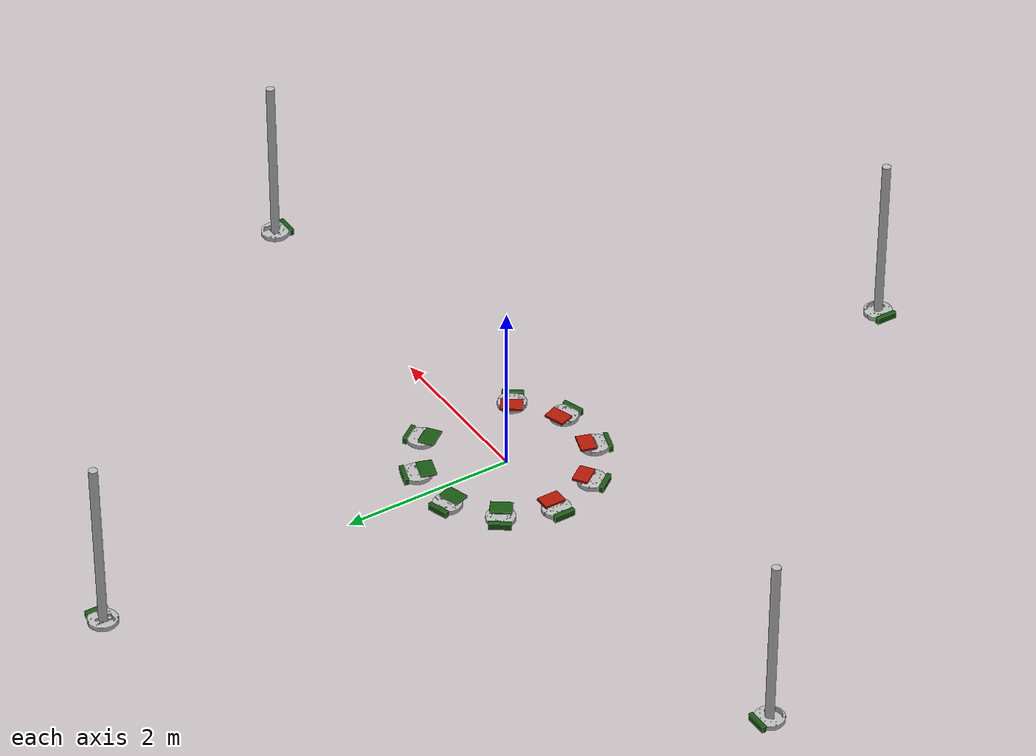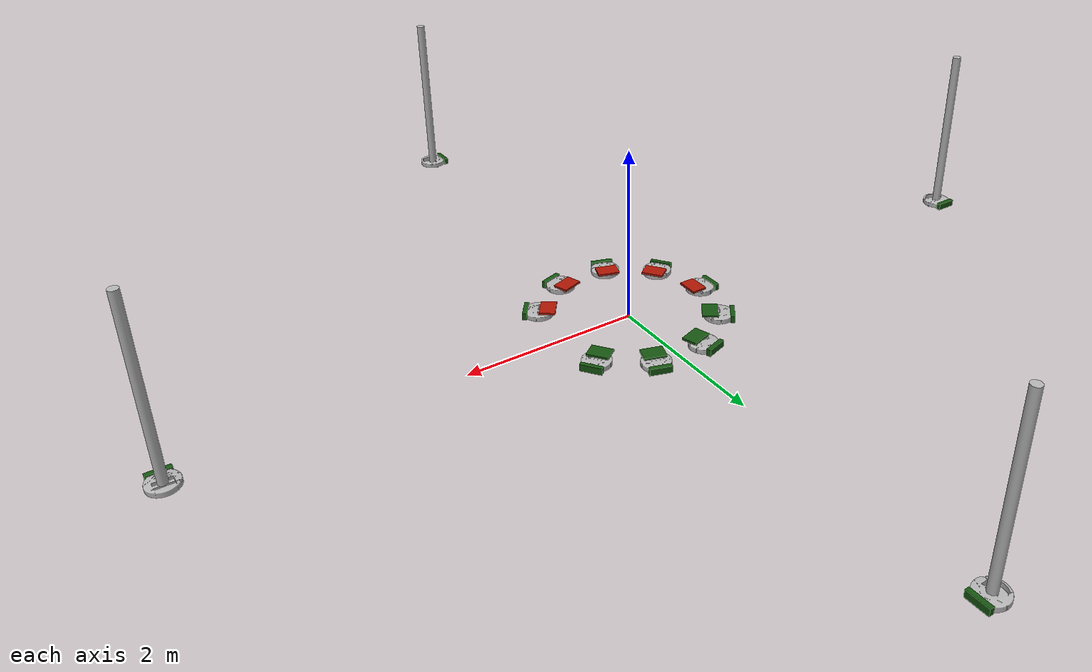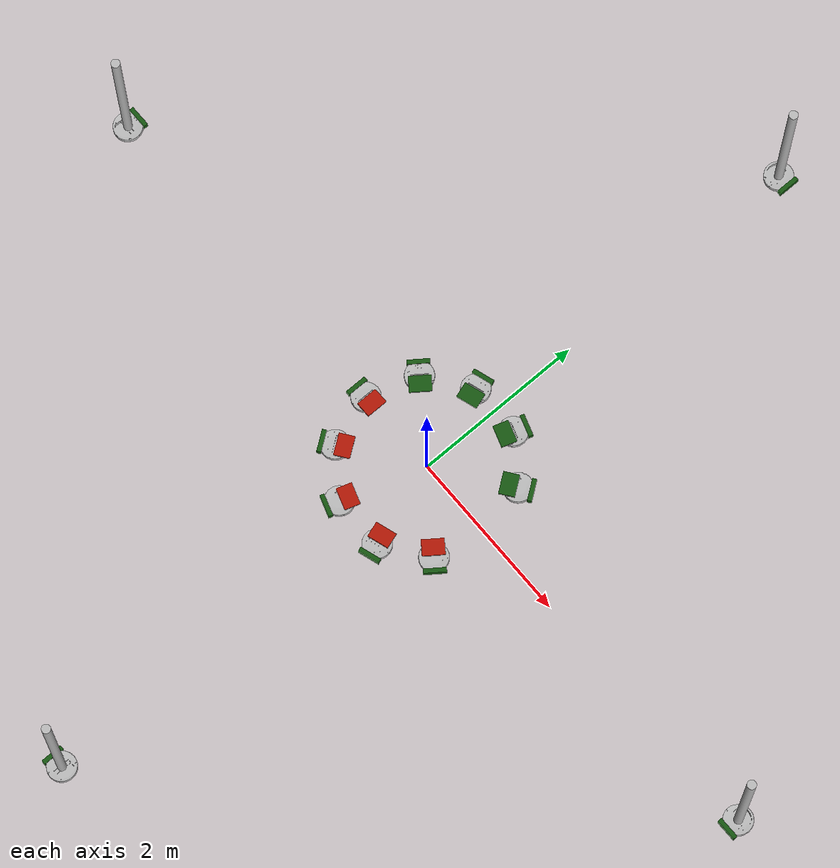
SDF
<sdf version="1.5">
 <world name="default">
  <include><uri>model://sun</uri></include>
  <model name="roomba_control_2">
   <pose>.809017 .587785 0 0 0 .628319</pose>
   <include><uri>model://roomba</uri></include>
   <plugin name="differential_drive_controller" filename="libgazebo_ros_diff_drive.so">
    <alwaysOn>true</alwaysOn>
    <updateRate>10</updateRate>
    <leftJoint>create::right_wheel</leftJoint>
    <rightJoint>create::left_wheel</rightJoint>
    <wheelSeparation>0.26000</wheelSeparation>
    <wheelDiameter>0.06600</wheelDiameter>
    <torque>20</torque>
    <commandTopic>cmd_vel</commandTopic>
    <odometryTopic>odom</odometryTopic>
    <odometryFrame>odom</odometryFrame>
    <robotBaseFrame>base</robotBaseFrame>
    <publishWheelTF>true</publishWheelTF>
    <publishWheelJointState>true</publishWheelJointState>
   </plugin>
   <link name="bumper">
    <pose>0.15 0 .05 0 0 0</pose>
    <collision name="collision"><geometry><box><size>.06 .26 .08</size></box></geometry></collision>
    <visual name="front_bumper_visual">
     <geometry><box><size>.05 .25 .08</size></box></geometry>
     <material>
      <diffuse>0.0859375 0.3359375 0.0625 1</diffuse>
      <specular>.0859375 0.3359375 0.0625 1</specular>
      <ambient>.0859375 0.3359375 0.0625 1</ambient>
      <emissive>.0859375 0.3359375 0.0625 1</emissive>
     </material>
    </visual>
    <sensor name="gripper_contact_sensor" type="contact">
     <always_on>true</always_on>
     <update_rate>1</update_rate>
     <contact><collision>collision</collision></contact>
     <plugin name="gripper_bumper" filename="libgazebo_ros_bumper.so">
      <bumperTopicName>front_bumper2</bumperTopicName>
      <frameName>roomba2</frameName>
     </plugin>
    </sensor>
   </link>
   <joint name="bumper" type="fixed">
    <parent>create::base</parent>
    <child>bumper</child>
    <axis><xyz>0 1 0</xyz><use_parent_model_frame>true</use_parent_model_frame></axis>
   </joint>
  </model>
  <model name="roomba_control_3">
   <pose>.309017 .951057 0 0 0 1.2566</pose>
   <include><uri>model://roomba</uri></include>
   <plugin name="differential_drive_controller" filename="libgazebo_ros_diff_drive.so">
    <alwaysOn>true</alwaysOn>
    <updateRate>10</updateRate>
    <leftJoint>create::right_wheel</leftJoint>
    <rightJoint>create::left_wheel</rightJoint>
    <wheelSeparation>0.26000</wheelSeparation>
    <wheelDiameter>0.06600</wheelDiameter>
    <torque>20</torque>
    <commandTopic>cmd_vel</commandTopic>
    <odometryTopic>odom</odometryTopic>
    <odometryFrame>odom</odometryFrame>
    <robotBaseFrame>base</robotBaseFrame>
    <publishWheelTF>true</publishWheelTF>
    <publishWheelJointState>true</publishWheelJointState>
   </plugin>
   <link name="bumper">
    <pose>0.15 0 .05 0 0 0</pose>
    <collision name="collision"><geometry><box><size>.06 .26 .08</size></box></geometry></collision>
    <visual name="front_bumper_visual">
     <geometry><box><size>.05 .25 .08</size></box></geometry>
     <material>
      <diffuse>0.0859375 0.3359375 0.0625 1</diffuse>
      <specular>.0859375 0.3359375 0.0625 1</specular>
      <ambient>.0859375 0.3359375 0.0625 1</ambient>
      <emissive>.0859375 0.3359375 0.0625 1</emissive>
     </material>
    </visual>
    <sensor name="gripper_contact_sensor" type="contact">
     <always_on>true</always_on>
     <update_rate>1</update_rate>
     <contact><collision>collision</collision></contact>
     <plugin name="gripper_bumper" filename="libgazebo_ros_bumper.so">
      <bumperTopicName>front_bumpe3</bumperTopicName>
      <frameName>roomba3</frameName>
     </plugin>
    </sensor>
   </link>
   <joint name="bumper" type="fixed">
    <parent>create::base</parent>
    <child>bumper</child>
    <axis><xyz>0 1 0</xyz><use_parent_model_frame>true</use_parent_model_frame></axis>
   </joint>
  </model>
  <model name="roomba_control_4">
   <pose>-.309017 .951057 0 0 0 1.88496</pose>
   <include><uri>model://roomba</uri></include>
   <plugin name="differential_drive_controller" filename="libgazebo_ros_diff_drive.so">
    <alwaysOn>true</alwaysOn>
    <updateRate>10</updateRate>
    <leftJoint>create::right_wheel</leftJoint>
    <rightJoint>create::left_wheel</rightJoint>
    <wheelSeparation>0.26000</wheelSeparation>
    <wheelDiameter>0.06600</wheelDiameter>
    <torque>20</torque>
    <commandTopic>cmd_vel</commandTopic>
    <odometryTopic>odom</odometryTopic>
    <odometryFrame>odom</odometryFrame>
    <robotBaseFrame>base</robotBaseFrame>
    <publishWheelTF>true</publishWheelTF>
    <publishWheelJointState>true</publishWheelJointState>
   </plugin>
   <link name="bumper">
    <pose>0.15 0 .05 0 0 0</pose>
    <collision name="collision"><geometry><box><size>.06 .26 .08</size></box></geometry></collision>
    <visual name="front_bumper_visual">
     <geometry><box><size>.05 .25 .08</size></box></geometry>
     <material>
      <diffuse>0.0859375 0.3359375 0.0625 1</diffuse>
      <specular>.0859375 0.3359375 0.0625 1</specular>
      <ambient>.0859375 0.3359375 0.0625 1</ambient>
      <emissive>.0859375 0.3359375 0.0625 1</emissive>
     </material>
    </visual>
    <sensor name="gripper_contact_sensor" type="contact">
     <always_on>true</always_on>
     <update_rate>1</update_rate>
     <contact><collision>collision</collision></contact>
     <plugin name="gripper_bumper" filename="libgazebo_ros_bumper.so">
      <bumperTopicName>front_bumper4</bumperTopicName>
      <frameName>roomba4</frameName>
     </plugin>
    </sensor>
   </link>
   <joint name="bumper" type="fixed">
    <parent>create::base</parent>
    <child>bumper</child>
    <axis><xyz>0 1 0</xyz><use_parent_model_frame>true</use_parent_model_frame></axis>
   </joint>
  </model>
  <model name="roomba_control_5">
   <pose>-.809017 .587785 0 0 0 2.51327</pose>
   <include><uri>model://roomba</uri></include>
   <plugin name="differential_drive_controller" filename="libgazebo_ros_diff_drive.so">
    <alwaysOn>true</alwaysOn>
    <updateRate>10</updateRate>
    <leftJoint>create::right_wheel</leftJoint>
    <rightJoint>create::left_wheel</rightJoint>
    <wheelSeparation>0.26000</wheelSeparation>
    <wheelDiameter>0.06600</wheelDiameter>
    <torque>20</torque>
    <commandTopic>cmd_vel</commandTopic>
    <odometryTopic>odom</odometryTopic>
    <odometryFrame>odom</odometryFrame>
    <robotBaseFrame>base</robotBaseFrame>
    <publishWheelTF>true</publishWheelTF>
    <publishWheelJointState>true</publishWheelJointState>
   </plugin>
   <link name="bumper">
    <pose>0.15 0 .05 0 0 0</pose>
    <collision name="collision"><geometry><box><size>.06 .26 .08</size></box></geometry></collision>
    <visual name="front_bumper_visual">
     <geometry><box><size>.05 .25 .08</size></box></geometry>
     <material>
      <diffuse>0.0859375 0.3359375 0.0625 1</diffuse>
      <specular>.0859375 0.3359375 0.0625 1</specular>
      <ambient>.0859375 0.3359375 0.0625 1</ambient>
      <emissive>.0859375 0.3359375 0.0625 1</emissive>
     </material>
    </visual>
    <sensor name="gripper_contact_sensor" type="contact">
     <always_on>true</always_on>
     <update_rate>1</update_rate>
     <contact><collision>collision</collision></contact>
     <plugin name="gripper_bumper" filename="libgazebo_ros_bumper.so">
      <bumperTopicName>front_bumper5</bumperTopicName>
      <frameName>roomba5</frameName>
     </plugin>
    </sensor>
   </link>
   <joint name="bumper" type="fixed">
    <parent>create::base</parent>
    <child>bumper</child>
    <axis><xyz>0 1 0</xyz><use_parent_model_frame>true</use_parent_model_frame></axis>
   </joint>
  </model>
  <model name="roomba_control_6">
   <pose>-1 0 0 0 0 3.14159</pose>
   <include><uri>model://roomba2</uri></include>
   <plugin name="differential_drive_controller" filename="libgazebo_ros_diff_drive.so">
    <alwaysOn>true</alwaysOn>
    <updateRate>10</updateRate>
    <leftJoint>create::right_wheel</leftJoint>
    <rightJoint>create::left_wheel</rightJoint>
    <wheelSeparation>0.26000</wheelSeparation>
    <wheelDiameter>0.06600</wheelDiameter>
    <torque>20</torque>
    <commandTopic>cmd_vel</commandTopic>
    <odometryTopic>odom</odometryTopic>
    <odometryFrame>odom</odometryFrame>
    <robotBaseFrame>base</robotBaseFrame>
    <publishWheelTF>true</publishWheelTF>
    <publishWheelJointState>true</publishWheelJointState>
   </plugin>
   <link name="bumper">
    <pose>0.15 0 .05 0 0 0</pose>
    <collision name="collision"><geometry><box><size>.06 .26 .08</size></box></geometry></collision>
    <visual name="front_bumper_visual">
     <geometry><box><size>.05 .25 .08</size></box></geometry>
     <material>
      <diffuse>0.0859375 0.3359375 0.0625 1</diffuse>
      <specular>.0859375 0.3359375 0.0625 1</specular>
      <ambient>.0859375 0.3359375 0.0625 1</ambient>
      <emissive>.0859375 0.3359375 0.0625 1</emissive>
     </material>
    </visual>
    <sensor name="gripper_contact_sensor" type="contact">
     <always_on>true</always_on>
     <update_rate>1</update_rate>
     <contact><collision>collision</collision></contact>
     <plugin name="gripper_bumper" filename="libgazebo_ros_bumper.so">
      <bumperTopicName>front_bumper6</bumperTopicName>
      <frameName>roomba6</frameName>
     </plugin>
    </sensor>
   </link>
   <joint name="bumper" type="fixed">
    <parent>create::base</parent>
    <child>bumper</child>
    <axis><xyz>0 1 0</xyz><use_parent_model_frame>true</use_parent_model_frame></axis>
   </joint>
  </model>
  <model name="roomba_control_7">
   <pose>-.809017 -.587785 0 0 0 3.76991</pose>
   <include><uri>model://roomba2</uri></include>
   <plugin name="differential_drive_controller" filename="libgazebo_ros_diff_drive.so">
    <alwaysOn>true</alwaysOn>
    <updateRate>10</updateRate>
    <leftJoint>create::right_wheel</leftJoint>
    <rightJoint>create::left_wheel</rightJoint>
    <wheelSeparation>0.26000</wheelSeparation>
    <wheelDiameter>0.06600</wheelDiameter>
    <torque>20</torque>
    <commandTopic>cmd_vel</commandTopic>
    <odometryTopic>odom</odometryTopic>
    <odometryFrame>odom</odometryFrame>
    <robotBaseFrame>base</robotBaseFrame>
    <publishWheelTF>true</publishWheelTF>
    <publishWheelJointState>true</publishWheelJointState>
   </plugin>
   <link name="bumper">
    <pose>0.15 0 .05 0 0 0</pose>
    <collision name="collision"><geometry><box><size>.06 .26 .08</size></box></geometry></collision>
    <visual name="front_bumper_visual">
     <geometry><box><size>.05 .25 .08</size></box></geometry>
     <material>
      <diffuse>0.0859375 0.3359375 0.0625 1</diffuse>
      <specular>.0859375 0.3359375 0.0625 1</specular>
      <ambient>.0859375 0.3359375 0.0625 1</ambient>
      <emissive>.0859375 0.3359375 0.0625 1</emissive>
     </material>
    </visual>
    <sensor name="gripper_contact_sensor" type="contact">
     <always_on>true</always_on>
     <update_rate>1</update_rate>
     <contact><collision>collision</collision></contact>
     <plugin name="gripper_bumper" filename="libgazebo_ros_bumper.so">
      <bumperTopicName>front_bumper7</bumperTopicName>
      <frameName>roomba7</frameName>
     </plugin>
    </sensor>
   </link>
   <joint name="bumper" type="fixed">
    <parent>create::base</parent>
    <child>bumper</child>
    <axis><xyz>0 1 0</xyz><use_parent_model_frame>true</use_parent_model_frame></axis>
   </joint>
  </model>
  <model name="roomba_control_8">
   <pose>-.309017 -.951057 0 0 0 4.39823</pose>
   <include><uri>model://roomba2</uri></include>
   <plugin name="differential_drive_controller" filename="libgazebo_ros_diff_drive.so">
    <alwaysOn>true</alwaysOn>
    <updateRate>10</updateRate>
    <leftJoint>create::right_wheel</leftJoint>
    <rightJoint>create::left_wheel</rightJoint>
    <wheelSeparation>0.26000</wheelSeparation>
    <wheelDiameter>0.06600</wheelDiameter>
    <torque>20</torque>
    <commandTopic>cmd_vel</commandTopic>
    <odometryTopic>odom</odometryTopic>
    <odometryFrame>odom</odometryFrame>
    <robotBaseFrame>base</robotBaseFrame>
    <publishWheelTF>true</publishWheelTF>
    <publishWheelJointState>true</publishWheelJointState>
   </plugin>
   <link name="bumper">
    <pose>0.15 0 .05 0 0 0</pose>
    <collision name="collision"><geometry><box><size>.06 .26 .08</size></box></geometry></collision>
    <visual name="front_bumper_visual">
     <geometry><box><size>.05 .25 .08</size></box></geometry>
     <material>
      <diffuse>0.0859375 0.3359375 0.0625 1</diffuse>
      <specular>.0859375 0.3359375 0.0625 1</specular>
      <ambient>.0859375 0.3359375 0.0625 1</ambient>
      <emissive>.0859375 0.3359375 0.0625 1</emissive>
     </material>
    </visual>
    <sensor name="gripper_contact_sensor" type="contact">
     <always_on>true</always_on>
     <update_rate>1</update_rate>
     <contact><collision>collision</collision></contact>
     <plugin name="gripper_bumper" filename="libgazebo_ros_bumper.so">
      <bumperTopicName>front_bumper8</bumperTopicName>
      <frameName>roomba8</frameName>
     </plugin>
    </sensor>
   </link>
   <joint name="bumper" type="fixed">
    <parent>create::base</parent>
    <child>bumper</child>
    <axis><xyz>0 1 0</xyz><use_parent_model_frame>true</use_parent_model_frame></axis>
   </joint>
  </model>
  <model name="roomba_control_9">
   <pose>.309017 -.951057 0 0 0 5.02655</pose>
   <include><uri>model://roomba2</uri></include>
   <plugin name="differential_drive_controller" filename="libgazebo_ros_diff_drive.so">
    <alwaysOn>true</alwaysOn>
    <updateRate>10</updateRate>
    <leftJoint>create::right_wheel</leftJoint>
    <rightJoint>create::left_wheel</rightJoint>
    <wheelSeparation>0.26000</wheelSeparation>
    <wheelDiameter>0.06600</wheelDiameter>
    <torque>20</torque>
    <commandTopic>cmd_vel</commandTopic>
    <odometryTopic>odom</odometryTopic>
    <odometryFrame>odom</odometryFrame>
    <robotBaseFrame>base</robotBaseFrame>
    <publishWheelTF>true</publishWheelTF>
    <publishWheelJointState>true</publishWheelJointState>
   </plugin>
   <link name="bumper">
    <pose>0.15 0 .05 0 0 0</pose>
    <collision name="collision"><geometry><box><size>.06 .26 .08</size></box></geometry></collision>
    <visual name="front_bumper_visual">
     <geometry><box><size>.05 .25 .08</size></box></geometry>
     <material>
      <diffuse>0.0859375 0.3359375 0.0625 1</diffuse>
      <specular>.0859375 0.3359375 0.0625 1</specular>
      <ambient>.0859375 0.3359375 0.0625 1</ambient>
      <emissive>.0859375 0.3359375 0.0625 1</emissive>
     </material>
    </visual>
    <sensor name="gripper_contact_sensor" type="contact">
     <always_on>true</always_on>
     <update_rate>1</update_rate>
     <contact><collision>collision</collision></contact>
     <plugin name="gripper_bumper" filename="libgazebo_ros_bumper.so">
      <bumperTopicName>front_bumper9</bumperTopicName>
      <frameName>roomba9</frameName>
     </plugin>
    </sensor>
   </link>
   <joint name="bumper" type="fixed">
    <parent>create::base</parent>
    <child>bumper</child>
    <axis><xyz>0 1 0</xyz><use_parent_model_frame>true</use_parent_model_frame></axis>
   </joint>
  </model>
  <model name="roomba_control_10">
   <pose>.809017 -.587785 0 0 0 5.65487</pose>
   <include><uri>model://roomba2</uri></include>
   <plugin name="differential_drive_controller" filename="libgazebo_ros_diff_drive.so">
    <alwaysOn>true</alwaysOn>
    <updateRate>10</updateRate>
    <leftJoint>create::right_wheel</leftJoint>
    <rightJoint>create::left_wheel</rightJoint>
    <wheelSeparation>0.26000</wheelSeparation>
    <wheelDiameter>0.06600</wheelDiameter>
    <torque>20</torque>
    <commandTopic>cmd_vel</commandTopic>
    <odometryTopic>odom</odometryTopic>
    <odometryFrame>odom</odometryFrame>
    <robotBaseFrame>base</robotBaseFrame>
    <publishWheelTF>true</publishWheelTF>
    <publishWheelJointState>true</publishWheelJointState>
   </plugin>
   <link name="bumper">
    <pose>0.15 0 .05 0 0 0</pose>
    <collision name="collision"><geometry><box><size>.06 .26 .08</size></box></geometry></collision>
    <visual name="front_bumper_visual">
     <geometry><box><size>.05 .25 .08</size></box></geometry>
     <material>
      <diffuse>0.0859375 0.3359375 0.0625 1</diffuse>
      <specular>.0859375 0.3359375 0.0625 1</specular>
      <ambient>.0859375 0.3359375 0.0625 1</ambient>
      <emissive>.0859375 0.3359375 0.0625 1</emissive>
     </material>
    </visual>
    <sensor name="gripper_contact_sensor" type="contact">
     <always_on>true</always_on>
     <update_rate>1</update_rate>
     <contact><collision>collision</collision></contact>
     <plugin name="gripper_bumper" filename="libgazebo_ros_bumper.so">
      <bumperTopicName>front_bumper10</bumperTopicName>
      <frameName>roomba10</frameName>
     </plugin>
    </sensor>
   </link>
   <joint name="bumper" type="fixed">
    <parent>create::base</parent>
    <child>bumper</child>
    <axis><xyz>0 1 0</xyz><use_parent_model_frame>true</use_parent_model_frame></axis>
   </joint>
  </model>
  <model name="obstacle_roomba_1">
   <pose>5 0 0 0 0 4.71289</pose>
   <include><uri>model://obstacle</uri></include>
   <plugin name="differential_drive_controller" filename="libgazebo_ros_diff_drive.so">
    <alwaysOn>true</alwaysOn>
    <updateRate>10</updateRate>
    <leftJoint>create::right_wheel</leftJoint>
    <rightJoint>create::left_wheel</rightJoint>
    <wheelSeparation>0.26000</wheelSeparation>
    <wheelDiameter>0.06600</wheelDiameter>
    <torque>20</torque>
    <commandTopic>cmd_vel</commandTopic>
    <odometryTopic>odom</odometryTopic>
    <odometryFrame>odom</odometryFrame>
    <robotBaseFrame>base</robotBaseFrame>
    <publishWheelTF>true</publishWheelTF>
    <publishWheelJointState>true</publishWheelJointState>
   </plugin>
   <link name="bumper">
    <pose>0.15 0 .05 0 0 0</pose>
    <collision name="collision"><geometry><box><size>.06 .26 .08</size></box></geometry></collision>
    <visual name="front_bumper_visual">
     <geometry><box><size>.05 .25 .08</size></box></geometry>
     <material>
      <diffuse>0.0859375 0.3359375 0.0625 1</diffuse>
      <specular>.0859375 0.3359375 0.0625 1</specular>
      <ambient>.0859375 0.3359375 0.0625 1</ambient>
      <emissive>.0859375 0.3359375 0.0625 1</emissive>
     </material>
    </visual>
    <sensor name="gripper_contact_sensor" type="contact">
     <always_on>true</always_on>
     <update_rate>10</update_rate>
     <contact><collision>collision</collision></contact>
     <plugin name="gripper_bumper" filename="libgazebo_ros_bumper.so">
      <bumperTopicName>front_bumper11</bumperTopicName>
      <frameName>obstacleRoomba1</frameName>
     </plugin>
    </sensor>
   </link>
   <joint name="bumper" type="fixed">
    <parent>create::base</parent>
    <child>bumper</child>
    <axis><xyz>0 1 0</xyz><use_parent_model_frame>true</use_parent_model_frame></axis>
   </joint>
  </model>
  <model name="obstacle_roomba_2">
   <pose>0 5 0 0 0 0</pose>
   <include><uri>model://obstacle</uri></include>
   <plugin name="differential_drive_controller" filename="libgazebo_ros_diff_drive.so">
    <alwaysOn>true</alwaysOn>
    <updateRate>10</updateRate>
    <leftJoint>create::right_wheel</leftJoint>
    <rightJoint>create::left_wheel</rightJoint>
    <wheelSeparation>0.26000</wheelSeparation>
    <wheelDiameter>0.06600</wheelDiameter>
    <torque>20</torque>
    <commandTopic>cmd_vel</commandTopic>
    <odometryTopic>odom</odometryTopic>
    <odometryFrame>odom</odometryFrame>
    <robotBaseFrame>base</robotBaseFrame>
    <publishWheelTF>true</publishWheelTF>
    <publishWheelJointState>true</publishWheelJointState>
   </plugin>
   <link name="bumper">
    <pose>0.15 0 .05 0 0 0</pose>
    <collision name="collision"><geometry><box><size>.06 .26 .08</size></box></geometry></collision>
    <visual name="front_bumper_visual">
     <geometry><box><size>.05 .25 .08</size></box></geometry>
     <material>
      <diffuse>0.0859375 0.3359375 0.0625 1</diffuse>
      <specular>.0859375 0.3359375 0.0625 1</specular>
      <ambient>.0859375 0.3359375 0.0625 1</ambient>
      <emissive>.0859375 0.3359375 0.0625 1</emissive>
     </material>
    </visual>
    <sensor name="gripper_contact_sensor" type="contact">
     <always_on>true</always_on>
     <update_rate>1</update_rate>
     <contact><collision>collision</collision></contact>
     <plugin name="gripper_bumper" filename="libgazebo_ros_bumper.so">
      <bumperTopicName>front_bumper12</bumperTopicName>
      <frameName>obstacleRoomba2</frameName>
     </plugin>
    </sensor>
   </link>
   <joint name="bumper" type="fixed">
    <parent>create::base</parent>
    <child>bumper</child>
    <axis><xyz>0 1 0</xyz><use_parent_model_frame>true</use_parent_model_frame></axis>
   </joint>
  </model>
  <model name="obstacle_roomba_3">
   <pose>-5 0 0 0 0 1.570796</pose>
   <include><uri>model://obstacle</uri></include>
   <plugin name="differential_drive_controller" filename="libgazebo_ros_diff_drive.so">
    <alwaysOn>true</alwaysOn>
    <updateRate>10</updateRate>
    <leftJoint>create::right_wheel</leftJoint>
    <rightJoint>create::left_wheel</rightJoint>
    <wheelSeparation>0.26000</wheelSeparation>
    <wheelDiameter>0.06600</wheelDiameter>
    <torque>20</torque>
    <commandTopic>cmd_vel</commandTopic>
    <odometryTopic>odom</odometryTopic>
    <odometryFrame>odom</odometryFrame>
    <robotBaseFrame>base</robotBaseFrame>
    <publishWheelTF>true</publishWheelTF>
    <publishWheelJointState>true</publishWheelJointState>
   </plugin>
   <link name="bumper">
    <pose>0.15 0 .05 0 0 0</pose>
    <collision name="collision"><geometry><box><size>.06 .26 .08</size></box></geometry></collision>
    <visual name="front_bumper_visual">
     <geometry><box><size>.05 .25 .08</size></box></geometry>
     <material>
      <diffuse>0.0859375 0.3359375 0.0625 1</diffuse>
      <specular>.0859375 0.3359375 0.0625 1</specular>
      <ambient>.0859375 0.3359375 0.0625 1</ambient>
      <emissive>.0859375 0.3359375 0.0625 1</emissive>
     </material>
    </visual>
    <sensor name="gripper_contact_sensor" type="contact">
     <always_on>true</always_on>
     <update_rate>1</update_rate>
     <contact><collision>collision</collision></contact>
     <plugin name="gripper_bumper" filename="libgazebo_ros_bumper.so">
      <bumperTopicName>front_bumper13</bumperTopicName>
      <frameName>obstacleRoomba3</frameName>
     </plugin>
    </sensor>
   </link>
   <joint name="bumper" type="fixed">
    <parent>create::base</parent>
    <child>bumper</child>
    <axis><xyz>0 1 0</xyz><use_parent_model_frame>true</use_parent_model_frame></axis>
   </joint>
  </model>
  <model name="obstacle_roomba_4">
   <pose>0 -5 0 0 0 3.14159</pose>
   <include><uri>model://obstacle</uri></include>
   <plugin name="differential_drive_controller" filename="libgazebo_ros_diff_drive.so">
    <alwaysOn>true</alwaysOn>
    <updateRate>10</updateRate>
    <leftJoint>create::right_wheel</leftJoint>
    <rightJoint>create::left_wheel</rightJoint>
    <wheelSeparation>0.26000</wheelSeparation>
    <wheelDiameter>0.06600</wheelDiameter>
    <torque>20</torque>
    <commandTopic>cmd_vel</commandTopic>
    <odometryTopic>odom</odometryTopic>
    <odometryFrame>odom</odometryFrame>
    <robotBaseFrame>base</robotBaseFrame>
    <publishWheelTF>true</publishWheelTF>
    <publishWheelJointState>true</publishWheelJointState>
   </plugin>
   <link name="bumper">
    <pose>0.15 0 .05 0 0 0</pose>
    <collision name="collision"><geometry><box><size>.06 .26 .08</size></box></geometry></collision>
    <visual name="front_bumper_visual">
     <geometry><box><size>.05 .25 .08</size></box></geometry>
     <material>
      <diffuse>0.0859375 0.3359375 0.0625 1</diffuse>
      <specular>.0859375 0.3359375 0.0625 1</specular>
      <ambient>.0859375 0.3359375 0.0625 1</ambient>
      <emissive>.0859375 0.3359375 0.0625 1</emissive>
     </material>
    </visual>
    <sensor name="gripper_contact_sensor" type="contact">
     <always_on>true</always_on>
     <update_rate>1</update_rate>
     <contact><collision>collision</collision></contact>
     <plugin name="gripper_bumper" filename="libgazebo_ros_bumper.so">
      <bumperTopicName>front_bumper14</bumperTopicName>
      <frameName>obstacleRoomba4</frameName>
     </plugin>
    </sensor>
   </link>
   <joint name="bumper" type="fixed">
    <parent>create::base</parent>
    <child>bumper</child>
    <axis><xyz>0 1 0</xyz><use_parent_model_frame>true</use_parent_model_frame></axis>
   </joint>
  </model>
 </world>
</sdf>

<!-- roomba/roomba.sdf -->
<sdf version="1.5">
  <model name="create">
    <link name="base">
      <inertial>
        <pose>0.001453 -0.000453 0.029787 0 0 0</pose>
        <inertia>
          <ixx>0.058640</ixx>
          <ixy>0.000124</ixy>
          <ixz>0.000615</ixz>
          <iyy>0.058786</iyy>
          <iyz>0.000014</iyz>
          <izz>1.532440</izz>
        </inertia>
        <mass>2.234000</mass>
      </inertial>
      <collision name="base_collision">
        <pose>0 0 0.047800 0 0 0</pose>
        <geometry>
          <cylinder>
            <radius>0.016495</radius>
            <length>0.061163</length>
          </cylinder>
        </geometry>
      </collision>
      <visual name="base_visual">
        <pose>0 0 0.047800 0 0 0</pose>
        <geometry>
          <mesh>
            <uri>model://create/meshes/create_body.dae</uri>
          </mesh>
        </geometry>
      </visual>
      <visual name='top_plate_visual'>
          <pose>-0.1 0.0 0.09 0 0 0</pose>
          <geometry>
            <box>
              <size>.18 .25 .025</size>
            </box>
          </geometry>
        <material>

            <!--green (RGB = 22,86,16)-->
            <diffuse>0.0859375 0.3359375 0.0625 1</diffuse>
            <specular>.0859375 0.3359375 0.0625 1</specular>
            <ambient>.0859375 0.3359375 0.0625 1</ambient>
            <emissive>.0859375 0.3359375 0.0625 1</emissive>
        </material>
      </visual>

      <collision name="front_wheel_collision">
        <pose>0.130000 0 0.017000 0 1.570700 1.570700</pose>
        <geometry>
          <sphere>
            <radius>0.018000</radius>
          </sphere>
        </geometry>
        <surface>
          <friction>
            <ode>
              <mu>0</mu>
              <mu2>0</mu2>
              <fdir1>0 0 0</fdir1>
              <slip1>0</slip1>
              <slip2>0</slip2>
            </ode>
          </friction>
        </surface>
      </collision>
      <visual name="front_wheel_visual">
        <pose>0.130000 0 0.017000 0 1.570700 1.570700</pose>
        <geometry>
          <sphere>
            <radius>0.009000</radius>
          </sphere>
        </geometry>
      </visual>
      <collision name="rear_wheel_collision">
        <pose>-0.13 0 0.017 0 1.5707 1.5707</pose>
        <geometry>
          <sphere>
            <radius>0.015000</radius>
          </sphere>
        </geometry>
        <surface>
          <friction>
            <ode>
              <mu>0</mu>
              <mu2>0</mu2>
              <fdir1>0 0 0</fdir1>
              <slip1>0</slip1>
              <slip2>0</slip2>
            </ode>
          </friction>
        </surface>
      </collision>
      <visual name="rear_wheel_visual">
        <pose>-0.130000 0 0.017000 0 1.570700 1.570700</pose>
        <geometry>
          <sphere>
            <radius>0.007500</radius>
          </sphere>
        </geometry>
      </visual>
      <sensor name="left_cliff_sensor" type="ray">
        <pose>0.070000 0.140000 0.027000 0 1.570790 0</pose>
        <ray>
          <scan>
            <horizontal>
              <samples>1</samples>
              <resolution>1.000000</resolution>
              <min_angle>0</min_angle>
              <max_angle>0</max_angle>
            </horizontal>
          </scan>
          <range>
            <min>0.010000</min>
            <max>0.040000</max>
            <resolution>0.100000</resolution>
          </range>
        </ray>
      </sensor>
      <sensor name="leftfront_cliff_sensor" type="ray">
        <pose>0.150000 0.040000 0.027000 0 1.570790 0</pose>
        <ray>
          <scan>
            <horizontal>
              <samples>1</samples>
              <resolution>1.000000</resolution>
              <min_angle>0</min_angle>
              <max_angle>0</max_angle>
            </horizontal>
          </scan>
          <range>
            <min>0.010000</min>
            <max>0.040000</max>
            <resolution>0.100000</resolution>
          </range>
        </ray>
      </sensor>
      <sensor name="right_cliff_sensor" type="ray">
        <pose>0.070000 -0.140000 0.027000 0 1.570790 0</pose>
        <ray>
          <scan>
            <horizontal>
              <samples>1</samples>
              <resolution>1.000000</resolution>
              <min_angle>0</min_angle>
              <max_angle>0</max_angle>
            </horizontal>
          </scan>
          <range>
            <min>0.010000</min>
            <max>0.040000</max>
            <resolution>0.100000</resolution>
          </range>
        </ray>
      </sensor>
      <sensor name="rightfront_cliff_sensor" type="ray">
        <pose>0.150000 -0.040000 0.027000 0 1.570790 0</pose>
        <ray>
          <scan>
            <horizontal>
              <samples>1</samples>
              <resolution>1.000000</resolution>
              <min_angle>0</min_angle>
              <max_angle>0</max_angle>
            </horizontal>
          </scan>
          <range>
            <min>0.010000</min>
            <max>0.040000</max>
            <resolution>0.100000</resolution>
          </range>
        </ray>
      </sensor>
      <sensor name="wall_sensor" type="ray">
        <pose>0.090000 -0.120000 0.059000 0 0 -1.000000</pose>
        <ray>
          <scan>
            <horizontal>
              <samples>1</samples>
              <resolution>1.000000</resolution>
              <min_angle>0</min_angle>
              <max_angle>0</max_angle>
            </horizontal>
          </scan>
          <range>
            <min>0.016000</min>
            <max>0.040000</max>
            <resolution>0.100000</resolution>
          </range>
        </ray>
      </sensor>
    </link>
    <link name="left_wheel">
      <pose>0 0.130000 0.032000 0 0 0</pose>
      <inertial>
        <inertia>
          <ixx>0.001000</ixx>
          <ixy>0</ixy>
          <ixz>0</ixz>
          <iyy>0.001000</iyy>
          <iyz>0</iyz>
          <izz>0.001000</izz>
        </inertia>
        <mass>0.010000</mass>
      </inertial>
      <collision name="collision">
        <pose>0 0 0 0 1.570700 1.570700</pose>
        <geometry>
          <cylinder>
            <radius>0.033000</radius>
            <length>0.023000</length>
          </cylinder>
        </geometry>
        <surface>
          <friction>
            <ode>
              <mu>10</mu>
              <mu2>10</mu2>
              <fdir1>0 0 0</fdir1>
              <slip1>0</slip1>
              <slip2>0</slip2>
            </ode>
          </friction>
        </surface>
      </collision>
      <visual name="visual">
        <pose>0 0 0 0 1.570700 1.570700</pose>
        <geometry>
          <cylinder>
            <radius>0.033000</radius>
            <length>0.023000</length>
          </cylinder>
        </geometry>
      </visual>
    </link>
    <link name="right_wheel">
      <pose>0 -0.130000 0.032000 0 0 0</pose>
      <inertial>
        <inertia>
          <ixx>0.001000</ixx>
          <ixy>0</ixy>
          <ixz>0</ixz>
          <iyy>0.001000</iyy>
          <iyz>0</iyz>
          <izz>0.001000</izz>
        </inertia>
        <mass>0.010000</mass>
      </inertial>
      <collision name="collision">
        <pose>0 0 0 0 1.570700 1.570700</pose>
        <geometry>
          <cylinder>
            <radius>0.033000</radius>
            <length>0.023000</length>
          </cylinder>
        </geometry>
        <surface>
          <friction>
            <ode>
              <mu>10</mu>
              <mu2>10</mu2>
              <fdir1>0 0 0</fdir1>
              <slip1>0</slip1>
              <slip2>0</slip2>
            </ode>
          </friction>
        </surface>
      </collision>
      <visual name="visual">
        <pose>0 0 0 0 1.570700 1.570700</pose>
        <geometry>
          <cylinder>
            <radius>0.033000</radius>
            <length>0.023000</length>
          </cylinder>
        </geometry>
      </visual>

    </link>
    <joint name="left_wheel" type="revolute">
      <parent>base</parent>
      <child>left_wheel</child>
      <axis>
        <xyz>0 1 0</xyz>
        <use_parent_model_frame>true</use_parent_model_frame>
      </axis>
    </joint>
    <joint name="right_wheel" type="revolute">
      <parent>base</parent>
      <child>right_wheel</child>
      <axis>
        <xyz>0 1 0</xyz>
        <use_parent_model_frame>true</use_parent_model_frame>
      </axis>
    </joint>

    <!-- front bumper and ros plugin -->

  </model>
</sdf>

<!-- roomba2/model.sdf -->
<sdf version="1.6">
  <model name="create">
    <link name="base">
      <inertial>
        <pose>0.001453 -0.000453 0.029787 0 0 0</pose>
        <inertia>
          <ixx>0.058640</ixx>
          <ixy>0.000124</ixy>
          <ixz>0.000615</ixz>
          <iyy>0.058786</iyy>
          <iyz>0.000014</iyz>
          <izz>1.532440</izz>
        </inertia>
        <mass>2.234000</mass>
      </inertial>
      <collision name="base_collision">
        <pose>0 0 0.047800 0 0 0</pose>
        <geometry>
          <cylinder>
            <radius>0.016495</radius>
            <length>0.061163</length>
          </cylinder>
        </geometry>
      </collision>
      <visual name="base_visual">
        <pose>0 0 0.047800 0 0 0</pose>
        <geometry>
          <mesh>
            <uri>model://create/meshes/create_body.dae</uri>
          </mesh>
        </geometry>
      </visual>

  <visual name='top_plate_visual'>
    <pose>-0.1 0.0 0.09 0 0 0</pose>
    <geometry>
      <box>
        <size>.18 .25 .025</size>
      </box>
    </geometry>
	<material>
	    <!--red (RGB = 176,22,4)-->
	    <diffuse>0.6875 0.0859 0.015625 1</diffuse>
	    <specular>0.6875 0.0859 0.015625 1</specular>
	    <ambient>0.6875 0.0859 0.015625 1</ambient>
	    <emissive>176 22 4 1</emissive>

	</material>
  </visual>

      <collision name="front_wheel_collision">
        <pose>0.130000 0 0.017000 0 1.570700 1.570700</pose>
        <geometry>
          <sphere>
            <radius>0.018000</radius>
          </sphere>
        </geometry>
        <surface>
          <friction>
            <ode>
              <mu>0</mu>
              <mu2>0</mu2>
              <fdir1>0 0 0</fdir1>
              <slip1>0</slip1>
              <slip2>0</slip2>
            </ode>
          </friction>
        </surface>
      </collision>
      <visual name="front_wheel_visual">
        <pose>0.130000 0 0.017000 0 1.570700 1.570700</pose>
        <geometry>
          <sphere>
            <radius>0.009000</radius>
          </sphere>
        </geometry>
      </visual>
      <collision name="rear_wheel_collision">
        <pose>-0.13 0 0.017 0 1.5707 1.5707</pose>
        <geometry>
          <sphere>
            <radius>0.015000</radius>
          </sphere>
        </geometry>
        <surface>
          <friction>
            <ode>
              <mu>0</mu>
              <mu2>0</mu2>
              <fdir1>0 0 0</fdir1>
              <slip1>0</slip1>
              <slip2>0</slip2>
            </ode>
          </friction>
        </surface>
      </collision>
      <visual name="rear_wheel_visual">
        <pose>-0.130000 0 0.017000 0 1.570700 1.570700</pose>
        <geometry>
          <sphere>
            <radius>0.007500</radius>
          </sphere>
        </geometry>
      </visual>
      <sensor name="left_cliff_sensor" type="ray">
        <pose>0.070000 0.140000 0.027000 0 1.570790 0</pose>
        <ray>
          <scan>
            <horizontal>
              <samples>1</samples>
              <resolution>1.000000</resolution>
              <min_angle>0</min_angle>
              <max_angle>0</max_angle>
            </horizontal>
          </scan>
          <range>
            <min>0.010000</min>
            <max>0.040000</max>
            <resolution>0.100000</resolution>
          </range>
        </ray>
      </sensor>
      <sensor name="leftfront_cliff_sensor" type="ray">
        <pose>0.150000 0.040000 0.027000 0 1.570790 0</pose>
        <ray>
          <scan>
            <horizontal>
              <samples>1</samples>
              <resolution>1.000000</resolution>
              <min_angle>0</min_angle>
              <max_angle>0</max_angle>
            </horizontal>
          </scan>
          <range>
            <min>0.010000</min>
            <max>0.040000</max>
            <resolution>0.100000</resolution>
          </range>
        </ray>
      </sensor>
      <sensor name="right_cliff_sensor" type="ray">
        <pose>0.070000 -0.140000 0.027000 0 1.570790 0</pose>
        <ray>
          <scan>
            <horizontal>
              <samples>1</samples>
              <resolution>1.000000</resolution>
              <min_angle>0</min_angle>
              <max_angle>0</max_angle>
            </horizontal>
          </scan>
          <range>
            <min>0.010000</min>
            <max>0.040000</max>
            <resolution>0.100000</resolution>
          </range>
        </ray>
      </sensor>
      <sensor name="rightfront_cliff_sensor" type="ray">
        <pose>0.150000 -0.040000 0.027000 0 1.570790 0</pose>
        <ray>
          <scan>
            <horizontal>
              <samples>1</samples>
              <resolution>1.000000</resolution>
              <min_angle>0</min_angle>
              <max_angle>0</max_angle>
            </horizontal>
          </scan>
          <range>
            <min>0.010000</min>
            <max>0.040000</max>
            <resolution>0.100000</resolution>
          </range>
        </ray>
      </sensor>
      <sensor name="wall_sensor" type="ray">
        <pose>0.090000 -0.120000 0.059000 0 0 -1.000000</pose>
        <ray>
          <scan>
            <horizontal>
              <samples>1</samples>
              <resolution>1.000000</resolution>
              <min_angle>0</min_angle>
              <max_angle>0</max_angle>
            </horizontal>
          </scan>
          <range>
            <min>0.016000</min>
            <max>0.040000</max>
            <resolution>0.100000</resolution>
          </range>
        </ray>
      </sensor>
    </link>
    <link name="left_wheel">
      <pose>0 0.130000 0.032000 0 0 0</pose>
      <inertial>
        <inertia>
          <ixx>0.001000</ixx>
          <ixy>0</ixy>
          <ixz>0</ixz>
          <iyy>0.001000</iyy>
          <iyz>0</iyz>
          <izz>0.001000</izz>
        </inertia>
        <mass>0.010000</mass>
      </inertial>
      <collision name="collision">
        <pose>0 0 0 0 1.570700 1.570700</pose>
        <geometry>
          <cylinder>
            <radius>0.033000</radius>
            <length>0.023000</length>
          </cylinder>
        </geometry>
        <surface>
          <friction>
            <ode>
              <mu>10</mu>
              <mu2>10</mu2>
              <fdir1>0 0 0</fdir1>
              <slip1>0</slip1>
              <slip2>0</slip2>
            </ode>
          </friction>
        </surface>
      </collision>
      <visual name="visual">
        <pose>0 0 0 0 1.570700 1.570700</pose>
        <geometry>
          <cylinder>
            <radius>0.033000</radius>
            <length>0.023000</length>
          </cylinder>
        </geometry>
      </visual>
    </link>
    <link name="right_wheel">
      <pose>0 -0.130000 0.032000 0 0 0</pose>
      <inertial>
        <inertia>
          <ixx>0.001000</ixx>
          <ixy>0</ixy>
          <ixz>0</ixz>
          <iyy>0.001000</iyy>
          <iyz>0</iyz>
          <izz>0.001000</izz>
        </inertia>
        <mass>0.010000</mass>
      </inertial>
      <collision name="collision">
        <pose>0 0 0 0 1.570700 1.570700</pose>
        <geometry>
          <cylinder>
            <radius>0.033000</radius>
            <length>0.023000</length>
          </cylinder>
        </geometry>
        <surface>
          <friction>
            <ode>
              <mu>10</mu>
              <mu2>10</mu2>
              <fdir1>0 0 0</fdir1>
              <slip1>0</slip1>
              <slip2>0</slip2>
            </ode>
          </friction>
        </surface>
      </collision>
      <visual name="visual">
        <pose>0 0 0 0 1.570700 1.570700</pose>
        <geometry>
          <cylinder>
            <radius>0.033000</radius>
            <length>0.023000</length>
          </cylinder>
        </geometry>
      </visual>
    </link>
    <joint name="left_wheel" type="revolute">
      <parent>base</parent>
      <child>left_wheel</child>
      <axis>
        <xyz>0 1 0</xyz>
        <use_parent_model_frame>true</use_parent_model_frame>
      </axis>
    </joint>
    <joint name="right_wheel" type="revolute">
      <parent>base</parent>
      <child>right_wheel</child>
      <axis>
        <xyz>0 1 0</xyz>
        <use_parent_model_frame>true</use_parent_model_frame>
      </axis>
    </joint>
  </model>

</sdf>

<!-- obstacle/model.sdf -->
<sdf version="1.5">
  <model name="create">
    <link name="base">
      <inertial>
        <pose>0.001453 -0.000453 0.029787 0 0 0</pose>
        <inertia>
          <ixx>0.058640</ixx>
          <ixy>0.000124</ixy>
          <ixz>0.000615</ixz>
          <iyy>0.058786</iyy>
          <iyz>0.000014</iyz>
          <izz>1.532440</izz>
        </inertia>
        <mass>2.234000</mass>
      </inertial>
      <collision name="base_collision">
        <pose>0 0 0.047800 0 0 0</pose>
        <geometry>
          <cylinder>
            <radius>0.016495</radius>
            <length>0.061163</length>
          </cylinder>
        </geometry>
      </collision>
      <visual name="base_visual">
        <pose>0 0 0.047800 0 0 0</pose>
        <geometry>
          <mesh>
            <uri>model://create/meshes/create_body.dae</uri>
          </mesh>
        </geometry>
      </visual>

      <visual name="obstacle_visual">
        <pose>0 0 1.05 0 0 0</pose>
	       <geometry>
          <cylinder>
            <radius>0.05</radius>
            <length>2.0</length>
          </cylinder>
        </geometry>
      </visual>
      <collision name="obstacle_collision">
        <pose>0 0 1.05 0 0 0</pose>
         <geometry>
          <cylinder>
            <radius>0.05</radius>
            <length>2.0</length>
          </cylinder>
        </geometry>
        <surface>
          <friction>
            <ode>
              <mu>10</mu>
              <mu2>10</mu2>
              <fdir1>0 0 0</fdir1>
              <slip1>0</slip1>
              <slip2>0</slip2>
            </ode>
          </friction>
        </surface>
      </collision>

      <collision name="front_wheel_collision">
        <pose>0.130000 0 0.017000 0 1.570700 1.570700</pose>
        <geometry>
          <sphere>
            <radius>0.018000</radius>
          </sphere>
        </geometry>
        <surface>
          <friction>
            <ode>
              <mu>0</mu>
              <mu2>0</mu2>
              <fdir1>0 0 0</fdir1>
              <slip1>0</slip1>
              <slip2>0</slip2>
            </ode>
          </friction>
        </surface>
      </collision>
      <visual name="front_wheel_visual">
        <pose>0.130000 0 0.017000 0 1.570700 1.570700</pose>
        <geometry>
          <sphere>
            <radius>0.009000</radius>
          </sphere>
        </geometry>
      </visual>
      <collision name="rear_wheel_collision">
        <pose>-0.13 0 0.017 0 1.5707 1.5707</pose>
        <geometry>
          <sphere>
            <radius>0.015000</radius>
          </sphere>
        </geometry>
        <surface>
          <friction>
            <ode>
              <mu>0</mu>
              <mu2>0</mu2>
              <fdir1>0 0 0</fdir1>
              <slip1>0</slip1>
              <slip2>0</slip2>
            </ode>
          </friction>
        </surface>
      </collision>
      <visual name="rear_wheel_visual">
        <pose>-0.130000 0 0.017000 0 1.570700 1.570700</pose>
        <geometry>
          <sphere>
            <radius>0.007500</radius>
          </sphere>
        </geometry>
      </visual>
      <sensor name="left_cliff_sensor" type="ray">
        <pose>0.070000 0.140000 0.027000 0 1.570790 0</pose>
        <ray>
          <scan>
            <horizontal>
              <samples>1</samples>
              <resolution>1.000000</resolution>
              <min_angle>0</min_angle>
              <max_angle>0</max_angle>
            </horizontal>
          </scan>
          <range>
            <min>0.010000</min>
            <max>0.040000</max>
            <resolution>0.100000</resolution>
          </range>
        </ray>
      </sensor>
      <sensor name="leftfront_cliff_sensor" type="ray">
        <pose>0.150000 0.040000 0.027000 0 1.570790 0</pose>
        <ray>
          <scan>
            <horizontal>
              <samples>1</samples>
              <resolution>1.000000</resolution>
              <min_angle>0</min_angle>
              <max_angle>0</max_angle>
            </horizontal>
          </scan>
          <range>
            <min>0.010000</min>
            <max>0.040000</max>
            <resolution>0.100000</resolution>
          </range>
        </ray>
      </sensor>
      <sensor name="right_cliff_sensor" type="ray">
        <pose>0.070000 -0.140000 0.027000 0 1.570790 0</pose>
        <ray>
          <scan>
            <horizontal>
              <samples>1</samples>
              <resolution>1.000000</resolution>
              <min_angle>0</min_angle>
              <max_angle>0</max_angle>
            </horizontal>
          </scan>
          <range>
            <min>0.010000</min>
            <max>0.040000</max>
            <resolution>0.100000</resolution>
          </range>
        </ray>
      </sensor>
      <sensor name="rightfront_cliff_sensor" type="ray">
        <pose>0.150000 -0.040000 0.027000 0 1.570790 0</pose>
        <ray>
          <scan>
            <horizontal>
              <samples>1</samples>
              <resolution>1.000000</resolution>
              <min_angle>0</min_angle>
              <max_angle>0</max_angle>
            </horizontal>
          </scan>
          <range>
            <min>0.010000</min>
            <max>0.040000</max>
            <resolution>0.100000</resolution>
          </range>
        </ray>
      </sensor>
      <sensor name="wall_sensor" type="ray">
        <pose>0.090000 -0.120000 0.059000 0 0 -1.000000</pose>
        <ray>
          <scan>
            <horizontal>
              <samples>1</samples>
              <resolution>1.000000</resolution>
              <min_angle>0</min_angle>
              <max_angle>0</max_angle>
            </horizontal>
          </scan>
          <range>
            <min>0.016000</min>
            <max>0.040000</max>
            <resolution>0.100000</resolution>
          </range>
        </ray>
      </sensor>
    </link>
    <link name="left_wheel">
      <pose>0 0.130000 0.032000 0 0 0</pose>
      <inertial>
        <inertia>
          <ixx>0.001000</ixx>
          <ixy>0</ixy>
          <ixz>0</ixz>
          <iyy>0.001000</iyy>
          <iyz>0</iyz>
          <izz>0.001000</izz>
        </inertia>
        <mass>0.010000</mass>
      </inertial>
      <collision name="collision">
        <pose>0 0 0 0 1.570700 1.570700</pose>
        <geometry>
          <cylinder>
            <radius>0.033000</radius>
            <length>0.023000</length>
          </cylinder>
        </geometry>
        <surface>
          <friction>
            <ode>
              <mu>10</mu>
              <mu2>10</mu2>
              <fdir1>0 0 0</fdir1>
              <slip1>0</slip1>
              <slip2>0</slip2>
            </ode>
          </friction>
        </surface>
      </collision>
      <visual name="visual">
        <pose>0 0 0 0 1.570700 1.570700</pose>
        <geometry>
          <cylinder>
            <radius>0.033000</radius>
            <length>0.023000</length>
          </cylinder>
        </geometry>
      </visual>
    </link>
    <link name="right_wheel">
      <pose>0 -0.130000 0.032000 0 0 0</pose>
      <inertial>
        <inertia>
          <ixx>0.001000</ixx>
          <ixy>0</ixy>
          <ixz>0</ixz>
          <iyy>0.001000</iyy>
          <iyz>0</iyz>
          <izz>0.001000</izz>
        </inertia>
        <mass>0.010000</mass>
      </inertial>
      <collision name="collision">
        <pose>0 0 0 0 1.570700 1.570700</pose>
        <geometry>
          <cylinder>
            <radius>0.033000</radius>
            <length>0.023000</length>
          </cylinder>
        </geometry>
        <surface>
          <friction>
            <ode>
              <mu>10</mu>
              <mu2>10</mu2>
              <fdir1>0 0 0</fdir1>
              <slip1>0</slip1>
              <slip2>0</slip2>
            </ode>
          </friction>
        </surface>
      </collision>
      <visual name="visual">
        <pose>0 0 0 0 1.570700 1.570700</pose>
        <geometry>
          <cylinder>
            <radius>0.033000</radius>
            <length>0.023000</length>
          </cylinder>
        </geometry>
      </visual>
    </link>
    <joint name="left_wheel" type="revolute">
      <parent>base</parent>
      <child>left_wheel</child>
      <axis>
        <xyz>0 1 0</xyz>
        <use_parent_model_frame>true</use_parent_model_frame>
      </axis>
    </joint>
    <joint name="right_wheel" type="revolute">
      <parent>base</parent>
      <child>right_wheel</child>
      <axis>
        <xyz>0 1 0</xyz>
        <use_parent_model_frame>true</use_parent_model_frame>
      </axis>
    </joint>
  </model>
</sdf>
